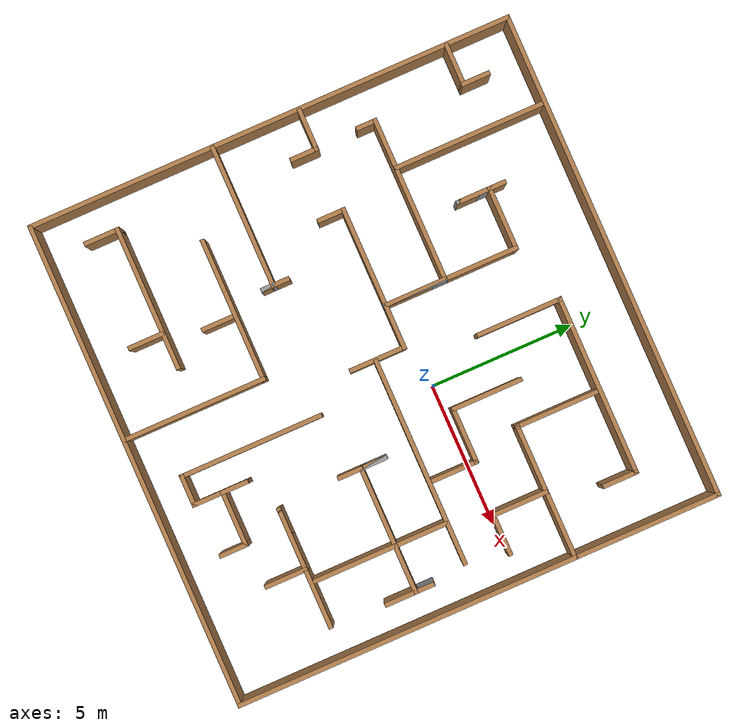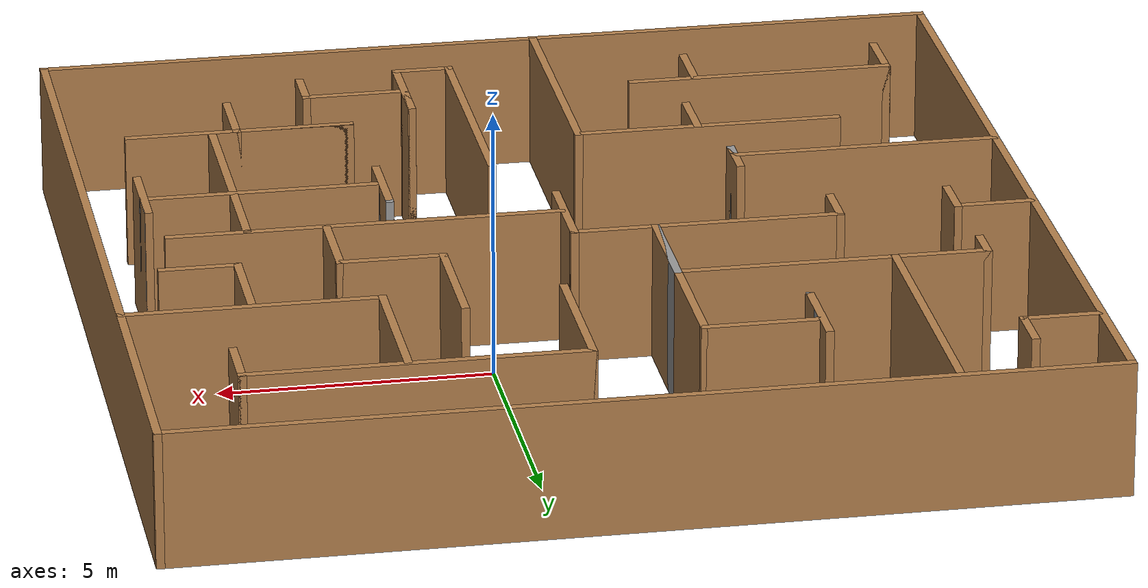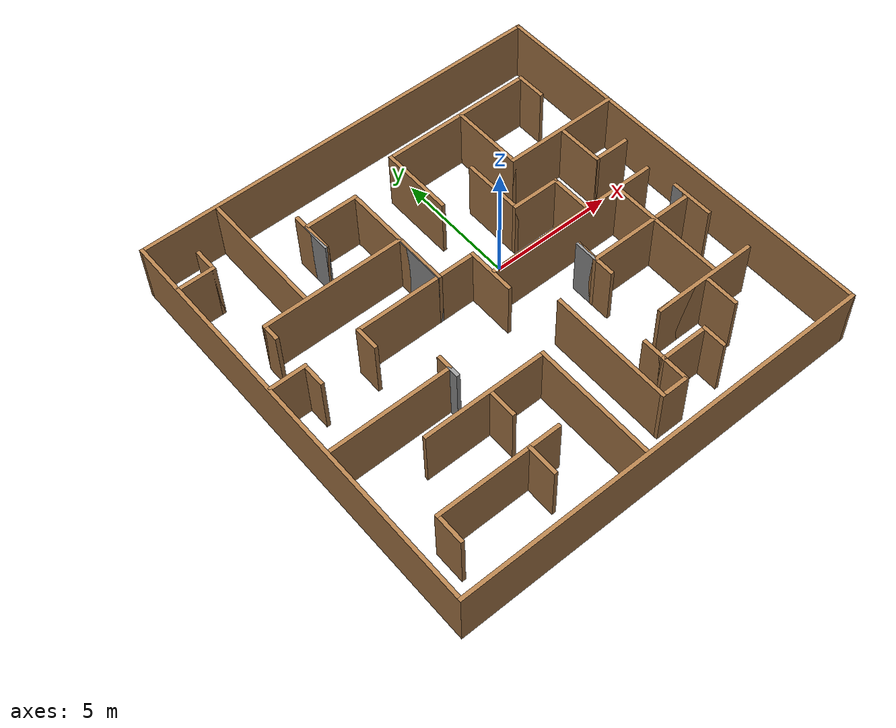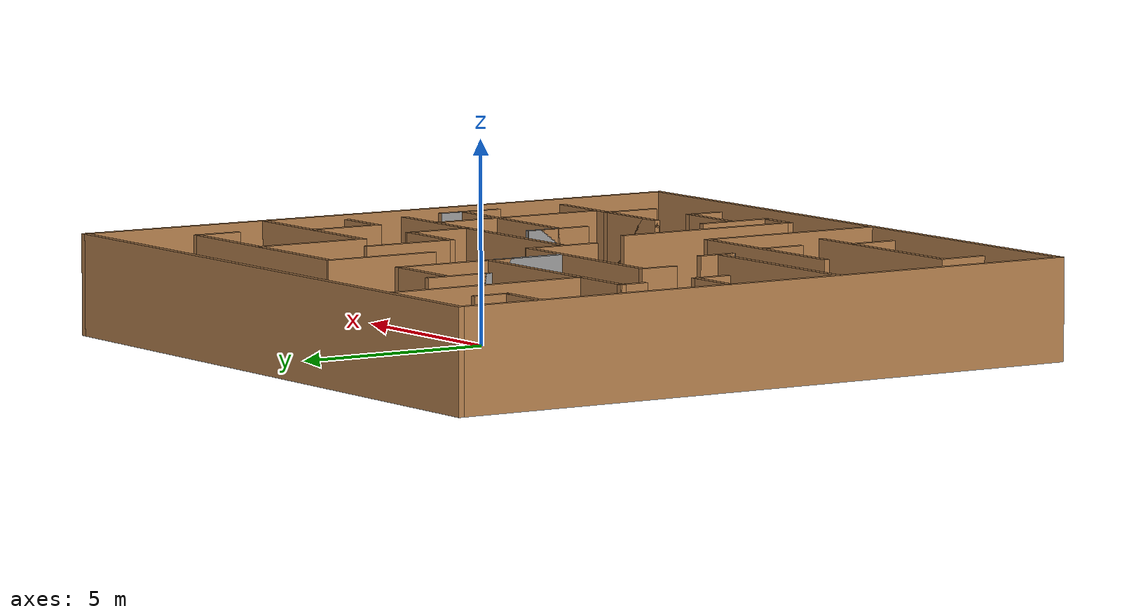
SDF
<?xml version='1.0'?>
<sdf version='1.7'>
  <model name='newmaze'>
    <pose>-1.51796 -1.44925 0 0 -0 0</pose>
    <link name='Wall_100'>
      <collision name='Wall_100_Collision'>
        <geometry>
          <box>
            <size>3 0.15 2.5</size>
          </box>
        </geometry>
        <pose>0 0 1.25 0 -0 0</pose>
      </collision>
      <visual name='Wall_100_Visual'>
        <pose>0 0 1.25 0 -0 0</pose>
        <geometry>
          <box>
            <size>3 0.15 2.5</size>
          </box>
        </geometry>
        <material>
          <script>
            <uri>file://media/materials/scripts/gazebo.material</uri>
            <name>Gazebo/Wood</name>
          </script>
          <ambient>1 1 1 1</ambient>
        </material>
        <meta>
          <layer>0</layer>
        </meta>
      </visual>
      <pose>3.81018 4.80727 0 0 -0 -1.5708</pose>
    </link>
    <link name='Wall_101'>
      <collision name='Wall_101_Collision'>
        <geometry>
          <box>
            <size>4.75 0.15 2.5</size>
          </box>
        </geometry>
        <pose>0 0 1.25 0 -0 0</pose>
      </collision>
      <visual name='Wall_101_Visual'>
        <pose>0 0 1.25 0 -0 0</pose>
        <geometry>
          <box>
            <size>4.75 0.15 2.5</size>
          </box>
        </geometry>
        <material>
          <script>
            <uri>file://media/materials/scripts/gazebo.material</uri>
            <name>Gazebo/Wood</name>
          </script>
          <ambient>1 1 1 1</ambient>
        </material>
        <meta>
          <layer>0</layer>
        </meta>
      </visual>
      <pose>6.11018 3.38227 0 0 -0 0</pose>
    </link>
    <link name='Wall_103'>
      <collision name='Wall_103_Collision'>
        <geometry>
          <box>
            <size>2 0.15 2.5</size>
          </box>
        </geometry>
        <pose>0 0 1.25 0 -0 0</pose>
      </collision>
      <visual name='Wall_103_Visual'>
        <pose>0 0 1.25 0 -0 0</pose>
        <geometry>
          <box>
            <size>2 0.15 2.5</size>
          </box>
        </geometry>
        <material>
          <script>
            <uri>file://media/materials/scripts/gazebo.material</uri>
            <name>Gazebo/Wood</name>
          </script>
          <ambient>1 1 1 1</ambient>
        </material>
        <meta>
          <layer>0</layer>
        </meta>
      </visual>
      <pose>6.11133 2.43744 0 0 -0 -1.5708</pose>
    </link>
    <link name='Wall_104'>
      <collision name='Wall_104_Collision'>
        <geometry>
          <box>
            <size>1.5 0.15 2.5</size>
          </box>
        </geometry>
        <pose>0 0 1.25 0 -0 0</pose>
      </collision>
      <visual name='Wall_104_Visual'>
        <pose>0 0 1.25 0 -0 0</pose>
        <geometry>
          <box>
            <size>1.5 0.15 2.5</size>
          </box>
        </geometry>
        <material>
          <script>
            <uri>file://media/materials/scripts/gazebo.material</uri>
            <name>Gazebo/Wood</name>
          </script>
          <ambient>1 1 1 1</ambient>
        </material>
        <meta>
          <layer>0</layer>
        </meta>
      </visual>
      <pose>6.78633 1.51244 0 0 -0 0</pose>
    </link>
    <link name='Wall_106'>
      <collision name='Wall_106_Collision'>
        <geometry>
          <box>
            <size>0.75 0.15 2.5</size>
          </box>
        </geometry>
        <pose>0 0 1.25 0 -0 0</pose>
      </collision>
      <visual name='Wall_106_Visual'>
        <pose>0 0 1.25 0 -0 0</pose>
        <geometry>
          <box>
            <size>0.75 0.15 2.5</size>
          </box>
        </geometry>
        <material>
          <script>
            <uri>file://media/materials/scripts/gazebo.material</uri>
            <name>Gazebo/Wood</name>
          </script>
          <ambient>1 1 1 1</ambient>
        </material>
        <meta>
          <layer>0</layer>
        </meta>
      </visual>
      <pose>-7.08821 2.8606 0 0 -0 1.5708</pose>
    </link>
    <link name='Wall_107'>
      <collision name='Wall_107_Collision'>
        <geometry>
          <box>
            <size>5.75 0.15 2.5</size>
          </box>
        </geometry>
        <pose>0 0 1.25 0 -0 0</pose>
      </collision>
      <visual name='Wall_107_Visual'>
        <pose>0 0 1.25 0 -0 0</pose>
        <geometry>
          <box>
            <size>5.75 0.15 2.5</size>
          </box>
        </geometry>
        <material>
          <script>
            <uri>file://media/materials/scripts/gazebo.material</uri>
            <name>Gazebo/Wood</name>
          </script>
          <ambient>1 1 1 1</ambient>
        </material>
        <meta>
          <layer>0</layer>
        </meta>
      </visual>
      <pose>-4.28821 3.1606 0 0 -0 0</pose>
    </link>
    <link name='Wall_108'>
      <collision name='Wall_108_Collision'>
        <geometry>
          <box>
            <size>2.25 0.15 2.5</size>
          </box>
        </geometry>
        <pose>0 0 1.25 0 -0 0</pose>
      </collision>
      <visual name='Wall_108_Visual'>
        <pose>0 0 1.25 0 -0 0</pose>
        <geometry>
          <box>
            <size>2.25 0.15 2.5</size>
          </box>
        </geometry>
        <material>
          <script>
            <uri>file://media/materials/scripts/gazebo.material</uri>
            <name>Gazebo/Grey</name>
          </script>
          <ambient>1 1 1 1</ambient>
        </material>
        <meta>
          <layer>0</layer>
        </meta>
      </visual>
      <pose>-1.48821 2.1106 0 0 -0 -1.5708</pose>
    </link>
    <link name='Wall_109'>
      <collision name='Wall_109_Collision'>
        <geometry>
          <box>
            <size>4.75 0.15 2.5</size>
          </box>
        </geometry>
        <pose>0 0 1.25 0 -0 0</pose>
      </collision>
      <visual name='Wall_109_Visual'>
        <pose>0 0 1.25 0 -0 0</pose>
        <geometry>
          <box>
            <size>4.75 0.15 2.5</size>
          </box>
        </geometry>
        <material>
          <script>
            <uri>file://media/materials/scripts/gazebo.material</uri>
            <name>Gazebo/Wood</name>
          </script>
          <ambient>1 1 1 1</ambient>
        </material>
        <meta>
          <layer>0</layer>
        </meta>
      </visual>
      <pose>-1.48821 3.3606 0 0 -0 1.5708</pose>
    </link>
    <link name='Wall_110'>
      <collision name='Wall_110_Collision'>
        <geometry>
          <box>
            <size>2.25 0.15 2.5</size>
          </box>
        </geometry>
        <pose>0 0 1.25 0 -0 0</pose>
      </collision>
      <visual name='Wall_110_Visual'>
        <pose>0 0 1.25 0 -0 0</pose>
        <geometry>
          <box>
            <size>2.25 0.15 2.5</size>
          </box>
        </geometry>
        <material>
          <script>
            <uri>file://media/materials/scripts/gazebo.material</uri>
            <name>Gazebo/Wood</name>
          </script>
          <ambient>1 1 1 1</ambient>
        </material>
        <meta>
          <layer>0</layer>
        </meta>
      </visual>
      <pose>-2.53821 5.6606 0 0 -0 3.14159</pose>
    </link>
    <link name='Wall_111'>
      <collision name='Wall_111_Collision'>
        <geometry>
          <box>
            <size>1.25 0.15 2.5</size>
          </box>
        </geometry>
        <pose>0 0 1.25 0 -0 0</pose>
      </collision>
      <visual name='Wall_111_Visual'>
        <pose>0 0 1.25 0 -0 0</pose>
        <geometry>
          <box>
            <size>1.25 0.15 2.5</size>
          </box>
        </geometry>
        <material>
          <script>
            <uri>file://media/materials/scripts/gazebo.material</uri>
            <name>Gazebo/Grey</name>
          </script>
          <ambient>1 1 1 1</ambient>
        </material>
        <meta>
          <layer>0</layer>
        </meta>
      </visual>
      <pose>-3.58821 5.1106 0 0 -0 -1.5708</pose>
    </link>
    <link name='Wall_112'>
      <collision name='Wall_112_Collision'>
        <geometry>
          <box>
            <size>1.75 0.15 2.5</size>
          </box>
        </geometry>
        <pose>0 0 1.25 0 -0 0</pose>
      </collision>
      <visual name='Wall_112_Visual'>
        <pose>0 0 1.25 0 -0 0</pose>
        <geometry>
          <box>
            <size>1.75 0.15 2.5</size>
          </box>
        </geometry>
        <material>
          <script>
            <uri>file://media/materials/scripts/gazebo.material</uri>
            <name>Gazebo/Wood</name>
          </script>
          <ambient>1 1 1 1</ambient>
        </material>
        <meta>
          <layer>0</layer>
        </meta>
      </visual>
      <pose>-3.58821 5.3606 0 0 -0 1.5708</pose>
    </link>
    <link name='Wall_114'>
      <collision name='Wall_114_Collision'>
        <geometry>
          <box>
            <size>5.25 0.15 2.5</size>
          </box>
        </geometry>
        <pose>0 0 1.25 0 -0 0</pose>
      </collision>
      <visual name='Wall_114_Visual'>
        <pose>0 0 1.25 0 -0 0</pose>
        <geometry>
          <box>
            <size>5.25 0.15 2.5</size>
          </box>
        </geometry>
        <material>
          <script>
            <uri>file://media/materials/scripts/gazebo.material</uri>
            <name>Gazebo/Wood</name>
          </script>
          <ambient>1 1 1 1</ambient>
        </material>
        <meta>
          <layer>0</layer>
        </meta>
      </visual>
      <pose>-5.41879 5.72406 0 0 -0 1.5708</pose>
    </link>
    <link name='Wall_116'>
      <collision name='Wall_116_Collision'>
        <geometry>
          <box>
            <size>1.5 0.15 2.5</size>
          </box>
        </geometry>
        <pose>0 0 1.25 0 -0 0</pose>
      </collision>
      <visual name='Wall_116_Visual'>
        <pose>0 0 1.25 0 -0 0</pose>
        <geometry>
          <box>
            <size>1.5 0.15 2.5</size>
          </box>
        </geometry>
        <material>
          <script>
            <uri>file://media/materials/scripts/gazebo.material</uri>
            <name>Gazebo/Wood</name>
          </script>
          <ambient>1 1 1 1</ambient>
        </material>
        <meta>
          <layer>0</layer>
        </meta>
      </visual>
      <pose>-7.70048 6.25144 0 0 -0 0</pose>
    </link>
    <link name='Wall_117'>
      <collision name='Wall_117_Collision'>
        <geometry>
          <box>
            <size>1 0.15 2.5</size>
          </box>
        </geometry>
        <pose>0 0 1.25 0 -0 0</pose>
      </collision>
      <visual name='Wall_117_Visual'>
        <pose>0 0 1.25 0 -0 0</pose>
        <geometry>
          <box>
            <size>1 0.15 2.5</size>
          </box>
        </geometry>
        <material>
          <script>
            <uri>file://media/materials/scripts/gazebo.material</uri>
            <name>Gazebo/Wood</name>
          </script>
          <ambient>1 1 1 1</ambient>
        </material>
        <meta>
          <layer>0</layer>
        </meta>
      </visual>
      <pose>-7.02548 6.67644 0 0 -0 1.5708</pose>
    </link>
    <link name='Wall_19'>
      <collision name='Wall_19_Collision'>
        <geometry>
          <box>
            <size>17 0.15 2.5</size>
          </box>
        </geometry>
        <pose>0 0 1.25 0 -0 0</pose>
      </collision>
      <visual name='Wall_19_Visual'>
        <pose>0 0 1.25 0 -0 0</pose>
        <geometry>
          <box>
            <size>17 0.15 2.5</size>
          </box>
        </geometry>
        <material>
          <script>
            <uri>file://media/materials/scripts/gazebo.material</uri>
            <name>Gazebo/Wood</name>
          </script>
          <ambient>1 1 1 1</ambient>
        </material>
        <meta>
          <layer>0</layer>
        </meta>
      </visual>
      <pose>0 -8.425 0 0 -0 0</pose>
    </link>
    <link name='Wall_20'>
      <collision name='Wall_20_Collision'>
        <geometry>
          <box>
            <size>17 0.15 2.5</size>
          </box>
        </geometry>
        <pose>0 0 1.25 0 -0 0</pose>
      </collision>
      <visual name='Wall_20_Visual'>
        <pose>0 0 1.25 0 -0 0</pose>
        <geometry>
          <box>
            <size>17 0.15 2.5</size>
          </box>
        </geometry>
        <material>
          <script>
            <uri>file://media/materials/scripts/gazebo.material</uri>
            <name>Gazebo/Wood</name>
          </script>
          <ambient>1 1 1 1</ambient>
        </material>
        <meta>
          <layer>0</layer>
        </meta>
      </visual>
      <pose>8.425 0 0 0 -0 1.5708</pose>
    </link>
    <link name='Wall_21'>
      <collision name='Wall_21_Collision'>
        <geometry>
          <box>
            <size>17 0.15 2.5</size>
          </box>
        </geometry>
        <pose>0 0 1.25 0 -0 0</pose>
      </collision>
      <visual name='Wall_21_Visual'>
        <pose>0 0 1.25 0 -0 0</pose>
        <geometry>
          <box>
            <size>17 0.15 2.5</size>
          </box>
        </geometry>
        <material>
          <script>
            <uri>file://media/materials/scripts/gazebo.material</uri>
            <name>Gazebo/Wood</name>
          </script>
          <ambient>1 1 1 1</ambient>
        </material>
        <meta>
          <layer>0</layer>
        </meta>
      </visual>
      <pose>0 8.425 0 0 -0 3.14159</pose>
    </link>
    <link name='Wall_22'>
      <collision name='Wall_22_Collision'>
        <geometry>
          <box>
            <size>17 0.15 2.5</size>
          </box>
        </geometry>
        <pose>0 0 1.25 0 -0 0</pose>
      </collision>
      <visual name='Wall_22_Visual'>
        <pose>0 0 1.25 0 -0 0</pose>
        <geometry>
          <box>
            <size>17 0.15 2.5</size>
          </box>
        </geometry>
        <material>
          <script>
            <uri>file://media/materials/scripts/gazebo.material</uri>
            <name>Gazebo/Wood</name>
          </script>
          <ambient>1 1 1 1</ambient>
        </material>
        <meta>
          <layer>0</layer>
        </meta>
      </visual>
      <pose>-8.425 0 0 0 -0 -1.5708</pose>
    </link>
    <link name='Wall_25'>
      <collision name='Wall_25_Collision'>
        <geometry>
          <box>
            <size>1.25 0.15 2.5</size>
          </box>
        </geometry>
        <pose>0 0 1.25 0 -0 0</pose>
      </collision>
      <visual name='Wall_25_Visual'>
        <pose>0 0 1.25 0 -0 0</pose>
        <geometry>
          <box>
            <size>1.25 0.15 2.5</size>
          </box>
        </geometry>
        <material>
          <script>
            <uri>file://media/materials/scripts/gazebo.material</uri>
            <name>Gazebo/Wood</name>
          </script>
          <ambient>1 1 1 1</ambient>
        </material>
        <meta>
          <layer>0</layer>
        </meta>
      </visual>
      <pose>-7.20966 -6.43403 0 0 -0 1.5708</pose>
    </link>
    <link name='Wall_26'>
      <collision name='Wall_26_Collision'>
        <geometry>
          <box>
            <size>5 0.15 2.5</size>
          </box>
        </geometry>
        <pose>0 0 1.25 0 -0 0</pose>
      </collision>
      <visual name='Wall_26_Visual'>
        <pose>0 0 1.25 0 -0 0</pose>
        <geometry>
          <box>
            <size>5 0.15 2.5</size>
          </box>
        </geometry>
        <material>
          <script>
            <uri>file://media/materials/scripts/gazebo.material</uri>
            <name>Gazebo/Wood</name>
          </script>
          <ambient>1 1 1 1</ambient>
        </material>
        <meta>
          <layer>0</layer>
        </meta>
      </visual>
      <pose>-4.78466 -5.88403 0 0 -0 0</pose>
    </link>
    <link name='Wall_28'>
      <collision name='Wall_28_Collision'>
        <geometry>
          <box>
            <size>1.25 0.15 2.5</size>
          </box>
        </geometry>
        <pose>0 0 1.25 0 -0 0</pose>
      </collision>
      <visual name='Wall_28_Visual'>
        <pose>0 0 1.25 0 -0 0</pose>
        <geometry>
          <box>
            <size>1.25 0.15 2.5</size>
          </box>
        </geometry>
        <material>
          <script>
            <uri>file://media/materials/scripts/gazebo.material</uri>
            <name>Gazebo/Wood</name>
          </script>
          <ambient>1 1 1 1</ambient>
        </material>
        <meta>
          <layer>0</layer>
        </meta>
      </visual>
      <pose>-3.54966 -6.48403 0 0 -0 -1.5708</pose>
    </link>
    <link name='Wall_36'>
      <collision name='Wall_36_Collision'>
        <geometry>
          <box>
            <size>5 0.15 2.5</size>
          </box>
        </geometry>
        <pose>0 0 1.25 0 -0 0</pose>
      </collision>
      <visual name='Wall_36_Visual'>
        <pose>0 0 1.25 0 -0 0</pose>
        <geometry>
          <box>
            <size>5 0.15 2.5</size>
          </box>
        </geometry>
        <material>
          <script>
            <uri>file://media/materials/scripts/gazebo.material</uri>
            <name>Gazebo/Wood</name>
          </script>
          <ambient>1 1 1 1</ambient>
        </material>
        <meta>
          <layer>0</layer>
        </meta>
      </visual>
      <pose>-0.899656 -5.93903 0 0 -0 1.5708</pose>
    </link>
    <link name='Wall_37'>
      <collision name='Wall_37_Collision'>
        <geometry>
          <box>
            <size>5 0.15 2.5</size>
          </box>
        </geometry>
        <pose>0 0 1.25 0 -0 0</pose>
      </collision>
      <visual name='Wall_37_Visual'>
        <pose>0 0 1.25 0 -0 0</pose>
        <geometry>
          <box>
            <size>5 0.15 2.5</size>
          </box>
        </geometry>
        <material>
          <script>
            <uri>file://media/materials/scripts/gazebo.material</uri>
            <name>Gazebo/Wood</name>
          </script>
          <ambient>1 1 1 1</ambient>
        </material>
        <meta>
          <layer>0</layer>
        </meta>
      </visual>
      <pose>-3.32466 -3.51403 0 0 -0 3.14159</pose>
    </link>
    <link name='Wall_39'>
      <collision name='Wall_39_Collision'>
        <geometry>
          <box>
            <size>1.25 0.15 2.5</size>
          </box>
        </geometry>
        <pose>0 0 1.25 0 -0 0</pose>
      </collision>
      <visual name='Wall_39_Visual'>
        <pose>0 0 1.25 0 -0 0</pose>
        <geometry>
          <box>
            <size>1.25 0.15 2.5</size>
          </box>
        </geometry>
        <material>
          <script>
            <uri>file://media/materials/scripts/gazebo.material</uri>
            <name>Gazebo/Wood</name>
          </script>
          <ambient>1 1 1 1</ambient>
        </material>
        <meta>
          <layer>0</layer>
        </meta>
      </visual>
      <pose>-3.13966 -4.07403 0 0 -0 -1.5708</pose>
    </link>
    <link name='Wall_43'>
      <collision name='Wall_43_Collision'>
        <geometry>
          <box>
            <size>5 0.15 2.5</size>
          </box>
        </geometry>
        <pose>0 0 1.25 0 -0 0</pose>
      </collision>
      <visual name='Wall_43_Visual'>
        <pose>0 0 1.25 0 -0 0</pose>
        <geometry>
          <box>
            <size>5 0.15 2.5</size>
          </box>
        </geometry>
        <material>
          <script>
            <uri>file://media/materials/scripts/gazebo.material</uri>
            <name>Gazebo/Wood</name>
          </script>
          <ambient>1 1 1 1</ambient>
        </material>
        <meta>
          <layer>0</layer>
        </meta>
      </visual>
      <pose>-5.96466 -2.00403 0 0 -0 0</pose>
    </link>
    <link name='Wall_44'>
      <collision name='Wall_44_Collision'>
        <geometry>
          <box>
            <size>0.5 0.15 2.5</size>
          </box>
        </geometry>
        <pose>0 0 1.25 0 -0 0</pose>
      </collision>
      <visual name='Wall_44_Visual'>
        <pose>0 0 1.25 0 -0 0</pose>
        <geometry>
          <box>
            <size>0.5 0.15 2.5</size>
          </box>
        </geometry>
        <material>
          <script>
            <uri>file://media/materials/scripts/gazebo.material</uri>
            <name>Gazebo/Grey</name>
          </script>
          <ambient>1 1 1 1</ambient>
        </material>
        <meta>
          <layer>0</layer>
        </meta>
      </visual>
      <pose>-3.53966 -2.17903 0 0 -0 -1.5708</pose>
    </link>
    <link name='Wall_45'>
      <collision name='Wall_45_Collision'>
        <geometry>
          <box>
            <size>1 0.15 2.5</size>
          </box>
        </geometry>
        <pose>0 0 1.25 0 -0 0</pose>
      </collision>
      <visual name='Wall_45_Visual'>
        <pose>0 0 1.25 0 -0 0</pose>
        <geometry>
          <box>
            <size>1 0.15 2.5</size>
          </box>
        </geometry>
        <material>
          <script>
            <uri>file://media/materials/scripts/gazebo.material</uri>
            <name>Gazebo/Wood</name>
          </script>
          <ambient>1 1 1 1</ambient>
        </material>
        <meta>
          <layer>0</layer>
        </meta>
      </visual>
      <pose>-3.53966 -1.92903 0 0 -0 1.5708</pose>
    </link>
    <link name='Wall_49'>
      <collision name='Wall_49_Collision'>
        <geometry>
          <box>
            <size>1.5 0.15 2.5</size>
          </box>
        </geometry>
        <pose>0 0 1.25 0 -0 0</pose>
      </collision>
      <visual name='Wall_49_Visual'>
        <pose>0 0 1.25 0 -0 0</pose>
        <geometry>
          <box>
            <size>1.5 0.15 2.5</size>
          </box>
        </geometry>
        <material>
          <script>
            <uri>file://media/materials/scripts/gazebo.material</uri>
            <name>Gazebo/Wood</name>
          </script>
          <ambient>1 1 1 1</ambient>
        </material>
        <meta>
          <layer>0</layer>
        </meta>
      </visual>
      <pose>-7.69244 1.05236 0 0 -0 0</pose>
    </link>
    <link name='Wall_50'>
      <collision name='Wall_50_Collision'>
        <geometry>
          <box>
            <size>1 0.15 2.5</size>
          </box>
        </geometry>
        <pose>0 0 1.25 0 -0 0</pose>
      </collision>
      <visual name='Wall_50_Visual'>
        <pose>0 0 1.25 0 -0 0</pose>
        <geometry>
          <box>
            <size>1 0.15 2.5</size>
          </box>
        </geometry>
        <material>
          <script>
            <uri>file://media/materials/scripts/gazebo.material</uri>
            <name>Gazebo/Wood</name>
          </script>
          <ambient>1 1 1 1</ambient>
        </material>
        <meta>
          <layer>0</layer>
        </meta>
      </visual>
      <pose>-7.01744 0.627362 0 0 -0 -1.5708</pose>
    </link>
    <link name='Wall_55'>
      <collision name='Wall_55_Collision'>
        <geometry>
          <box>
            <size>1 0.15 2.5</size>
          </box>
        </geometry>
        <pose>0 0 1.25 0 -0 0</pose>
      </collision>
      <visual name='Wall_55_Visual'>
        <pose>0 0 1.25 0 -0 0</pose>
        <geometry>
          <box>
            <size>1 0.15 2.5</size>
          </box>
        </geometry>
        <material>
          <script>
            <uri>file://media/materials/scripts/gazebo.material</uri>
            <name>Gazebo/Wood</name>
          </script>
          <ambient>1 1 1 1</ambient>
        </material>
        <meta>
          <layer>0</layer>
        </meta>
      </visual>
      <pose>-4.85744 0.637362 0 0 -0 1.5708</pose>
    </link>
    <link name='Wall_56'>
      <collision name='Wall_56_Collision'>
        <geometry>
          <box>
            <size>5 0.15 2.5</size>
          </box>
        </geometry>
        <pose>0 0 1.25 0 -0 0</pose>
      </collision>
      <visual name='Wall_56_Visual'>
        <pose>0 0 1.25 0 -0 0</pose>
        <geometry>
          <box>
            <size>5 0.15 2.5</size>
          </box>
        </geometry>
        <material>
          <script>
            <uri>file://media/materials/scripts/gazebo.material</uri>
            <name>Gazebo/Wood</name>
          </script>
          <ambient>1 1 1 1</ambient>
        </material>
        <meta>
          <layer>0</layer>
        </meta>
      </visual>
      <pose>-2.43244 1.06236 0 0 -0 0</pose>
    </link>
    <link name='Wall_57'>
      <collision name='Wall_57_Collision'>
        <geometry>
          <box>
            <size>2 0.15 2.5</size>
          </box>
        </geometry>
        <pose>0 0 1.25 0 -0 0</pose>
      </collision>
      <visual name='Wall_57_Visual'>
        <pose>0 0 1.25 0 -0 0</pose>
        <geometry>
          <box>
            <size>2 0.15 2.5</size>
          </box>
        </geometry>
        <material>
          <script>
            <uri>file://media/materials/scripts/gazebo.material</uri>
            <name>Gazebo/Wood</name>
          </script>
          <ambient>1 1 1 1</ambient>
        </material>
        <meta>
          <layer>0</layer>
        </meta>
      </visual>
      <pose>-0.007444 0.137362 0 0 -0 -1.5708</pose>
    </link>
    <link name='Wall_59'>
      <collision name='Wall_59_Collision'>
        <geometry>
          <box>
            <size>7.25 0.15 2.5</size>
          </box>
        </geometry>
        <pose>0 0 1.25 0 -0 0</pose>
      </collision>
      <visual name='Wall_59_Visual'>
        <pose>0 0 1.25 0 -0 0</pose>
        <geometry>
          <box>
            <size>7.25 0.15 2.5</size>
          </box>
        </geometry>
        <material>
          <script>
            <uri>file://media/materials/scripts/gazebo.material</uri>
            <name>Gazebo/Wood</name>
          </script>
          <ambient>1 1 1 1</ambient>
        </material>
        <meta>
          <layer>0</layer>
        </meta>
      </visual>
      <pose>3.60256 0.052362 0 0 -0 0</pose>
    </link>
    <link name='Wall_61'>
      <collision name='Wall_61_Collision'>
        <geometry>
          <box>
            <size>5 0.15 2.5</size>
          </box>
        </geometry>
        <pose>0 0 1.25 0 -0 0</pose>
      </collision>
      <visual name='Wall_61_Visual'>
        <pose>0 0 1.25 0 -0 0</pose>
        <geometry>
          <box>
            <size>5 0.15 2.5</size>
          </box>
        </geometry>
        <material>
          <script>
            <uri>file://media/materials/scripts/gazebo.material</uri>
            <name>Gazebo/Wood</name>
          </script>
          <ambient>1 1 1 1</ambient>
        </material>
        <meta>
          <layer>0</layer>
        </meta>
      </visual>
      <pose>0.923076 -4.74687 0 0 -0 -1.5708</pose>
    </link>
    <link name='Wall_62'>
      <collision name='Wall_62_Collision'>
        <geometry>
          <box>
            <size>1.1502 0.15 2.5</size>
          </box>
        </geometry>
        <pose>0 0 1.25 0 -0 0</pose>
      </collision>
      <visual name='Wall_62_Visual'>
        <pose>0 0 1.25 0 -0 0</pose>
        <geometry>
          <box>
            <size>1.1502 0.15 2.5</size>
          </box>
        </geometry>
        <material>
          <script>
            <uri>file://media/materials/scripts/gazebo.material</uri>
            <name>Gazebo/Wood</name>
          </script>
          <ambient>1 1 1 1</ambient>
        </material>
        <meta>
          <layer>0</layer>
        </meta>
      </visual>
      <pose>1.42308 -7.18187 0 0 -0 0</pose>
    </link>
    <link name='Wall_63'>
      <collision name='Wall_63_Collision'>
        <geometry>
          <box>
            <size>2 0.15 2.5</size>
          </box>
        </geometry>
        <pose>0 0 1.25 0 -0 0</pose>
      </collision>
      <visual name='Wall_63_Visual'>
        <pose>0 0 1.25 0 -0 0</pose>
        <geometry>
          <box>
            <size>2 0.15 2.5</size>
          </box>
        </geometry>
        <material>
          <script>
            <uri>file://media/materials/scripts/gazebo.material</uri>
            <name>Gazebo/Wood</name>
          </script>
          <ambient>1 1 1 1</ambient>
        </material>
        <meta>
          <layer>0</layer>
        </meta>
      </visual>
      <pose>1.92308 -6.25687 0 0 -0 1.5708</pose>
    </link>
    <link name='Wall_64'>
      <collision name='Wall_64_Collision'>
        <geometry>
          <box>
            <size>1 0.15 2.5</size>
          </box>
        </geometry>
        <pose>0 0 1.25 0 -0 0</pose>
      </collision>
      <visual name='Wall_64_Visual'>
        <pose>0 0 1.25 0 -0 0</pose>
        <geometry>
          <box>
            <size>1 0.15 2.5</size>
          </box>
        </geometry>
        <material>
          <script>
            <uri>file://media/materials/scripts/gazebo.material</uri>
            <name>Gazebo/Wood</name>
          </script>
          <ambient>1 1 1 1</ambient>
        </material>
        <meta>
          <layer>0</layer>
        </meta>
      </visual>
      <pose>1.92308 -5.75687 0 0 -0 -1.5708</pose>
    </link>
    <link name='Wall_65'>
      <collision name='Wall_65_Collision'>
        <geometry>
          <box>
            <size>2 0.15 2.5</size>
          </box>
        </geometry>
        <pose>0 0 1.25 0 -0 0</pose>
      </collision>
      <visual name='Wall_65_Visual'>
        <pose>0 0 1.25 0 -0 0</pose>
        <geometry>
          <box>
            <size>2 0.15 2.5</size>
          </box>
        </geometry>
        <material>
          <script>
            <uri>file://media/materials/scripts/gazebo.material</uri>
            <name>Gazebo/Wood</name>
          </script>
          <ambient>1 1 1 1</ambient>
        </material>
        <meta>
          <layer>0</layer>
        </meta>
      </visual>
      <pose>2.84808 -6.18187 0 0 -0 0</pose>
    </link>
    <link name='Wall_66'>
      <collision name='Wall_66_Collision'>
        <geometry>
          <box>
            <size>1 0.15 2.5</size>
          </box>
        </geometry>
        <pose>0 0 1.25 0 -0 0</pose>
      </collision>
      <visual name='Wall_66_Visual'>
        <pose>0 0 1.25 0 -0 0</pose>
        <geometry>
          <box>
            <size>1 0.15 2.5</size>
          </box>
        </geometry>
        <material>
          <script>
            <uri>file://media/materials/scripts/gazebo.material</uri>
            <name>Gazebo/Wood</name>
          </script>
          <ambient>1 1 1 1</ambient>
        </material>
        <meta>
          <layer>0</layer>
        </meta>
      </visual>
      <pose>3.77308 -6.60686 0 0 -0 -1.5708</pose>
    </link>
    <link name='Wall_73'>
      <collision name='Wall_73_Collision'>
        <geometry>
          <box>
            <size>1.5 0.15 2.5</size>
          </box>
        </geometry>
        <pose>0 0 1.25 0 -0 0</pose>
      </collision>
      <visual name='Wall_73_Visual'>
        <pose>0 0 1.25 0 -0 0</pose>
        <geometry>
          <box>
            <size>1.5 0.15 2.5</size>
          </box>
        </geometry>
        <material>
          <script>
            <uri>file://media/materials/scripts/gazebo.material</uri>
            <name>Gazebo/Wood</name>
          </script>
          <ambient>1 1 1 1</ambient>
        </material>
        <meta>
          <layer>0</layer>
        </meta>
      </visual>
      <pose>5.27685 -5.41473 0 0 -0 1.5708</pose>
    </link>
    <link name='Wall_76'>
      <collision name='Wall_76_Collision'>
        <geometry>
          <box>
            <size>2.25 0.15 2.5</size>
          </box>
        </geometry>
        <pose>0 0 1.25 0 -0 0</pose>
      </collision>
      <visual name='Wall_76_Visual'>
        <pose>0 0 1.25 0 -0 0</pose>
        <geometry>
          <box>
            <size>2.25 0.15 2.5</size>
          </box>
        </geometry>
        <material>
          <script>
            <uri>file://media/materials/scripts/gazebo.material</uri>
            <name>Gazebo/Wood</name>
          </script>
          <ambient>1 1 1 1</ambient>
        </material>
        <meta>
          <layer>0</layer>
        </meta>
      </visual>
      <pose>4.22685 -4.73973 0 0 -0 3.14159</pose>
    </link>
    <link name='Wall_77'>
      <collision name='Wall_77_Collision'>
        <geometry>
          <box>
            <size>4.25 0.15 2.5</size>
          </box>
        </geometry>
        <pose>0 0 1.25 0 -0 0</pose>
      </collision>
      <visual name='Wall_77_Visual'>
        <pose>0 0 1.25 0 -0 0</pose>
        <geometry>
          <box>
            <size>4.25 0.15 2.5</size>
          </box>
        </geometry>
        <material>
          <script>
            <uri>file://media/materials/scripts/gazebo.material</uri>
            <name>Gazebo/Wood</name>
          </script>
          <ambient>1 1 1 1</ambient>
        </material>
        <meta>
          <layer>0</layer>
        </meta>
      </visual>
      <pose>5.22685 -4.73973 0 0 -0 0</pose>
    </link>
    <link name='Wall_79'>
      <collision name='Wall_79_Collision'>
        <geometry>
          <box>
            <size>4.75 0.15 2.5</size>
          </box>
        </geometry>
        <pose>0 0 1.25 0 -0 0</pose>
      </collision>
      <visual name='Wall_79_Visual'>
        <pose>0 0 1.25 0 -0 0</pose>
        <geometry>
          <box>
            <size>4.75 0.15 2.5</size>
          </box>
        </geometry>
        <material>
          <script>
            <uri>file://media/materials/scripts/gazebo.material</uri>
            <name>Gazebo/Wood</name>
          </script>
          <ambient>1 1 1 1</ambient>
        </material>
        <meta>
          <layer>0</layer>
        </meta>
      </visual>
      <pose>5.74103 -2.29901 0 0 -0 1.5708</pose>
    </link>
    <link name='Wall_81'>
      <collision name='Wall_81_Collision'>
        <geometry>
          <box>
            <size>4.5 0.15 2.5</size>
          </box>
        </geometry>
        <pose>0 0 1.25 0 -0 0</pose>
      </collision>
      <visual name='Wall_81_Visual'>
        <pose>0 0 1.25 0 -0 0</pose>
        <geometry>
          <box>
            <size>4.5 0.15 2.5</size>
          </box>
        </geometry>
        <material>
          <script>
            <uri>file://media/materials/scripts/gazebo.material</uri>
            <name>Gazebo/Wood</name>
          </script>
          <ambient>1 1 1 1</ambient>
        </material>
        <meta>
          <layer>0</layer>
        </meta>
      </visual>
      <pose>5.19168 -1.78208 0 0 -0 0</pose>
    </link>
    <link name='Wall_83'>
      <collision name='Wall_83_Collision'>
        <geometry>
          <box>
            <size>0.75 0.15 2.5</size>
          </box>
        </geometry>
        <pose>0 0 1.25 0 -0 0</pose>
      </collision>
      <visual name='Wall_83_Visual'>
        <pose>0 0 1.25 0 -0 0</pose>
        <geometry>
          <box>
            <size>0.75 0.15 2.5</size>
          </box>
        </geometry>
        <material>
          <script>
            <uri>file://media/materials/scripts/gazebo.material</uri>
            <name>Gazebo/Grey</name>
          </script>
          <ambient>1 1 1 1</ambient>
        </material>
        <meta>
          <layer>0</layer>
        </meta>
      </visual>
      <pose>7.36668 -1.48208 0 0 -0 1.5708</pose>
    </link>
    <link name='Wall_84'>
      <collision name='Wall_84_Collision'>
        <geometry>
          <box>
            <size>1.75 0.15 2.5</size>
          </box>
        </geometry>
        <pose>0 0 1.25 0 -0 0</pose>
      </collision>
      <visual name='Wall_84_Visual'>
        <pose>0 0 1.25 0 -0 0</pose>
        <geometry>
          <box>
            <size>1.75 0.15 2.5</size>
          </box>
        </geometry>
        <material>
          <script>
            <uri>file://media/materials/scripts/gazebo.material</uri>
            <name>Gazebo/Wood</name>
          </script>
          <ambient>1 1 1 1</ambient>
        </material>
        <meta>
          <layer>0</layer>
        </meta>
      </visual>
      <pose>7.36668 -1.98208 0 0 -0 -1.5708</pose>
    </link>
    <link name='Wall_86'>
      <collision name='Wall_86_Collision'>
        <geometry>
          <box>
            <size>1 0.15 2.5</size>
          </box>
        </geometry>
        <pose>0 0 1.25 0 -0 0</pose>
      </collision>
      <visual name='Wall_86_Visual'>
        <pose>0 0 1.25 0 -0 0</pose>
        <geometry>
          <box>
            <size>1 0.15 2.5</size>
          </box>
        </geometry>
        <material>
          <script>
            <uri>file://media/materials/scripts/gazebo.material</uri>
            <name>Gazebo/Grey</name>
          </script>
          <ambient>1 1 1 1</ambient>
        </material>
        <meta>
          <layer>0</layer>
        </meta>
      </visual>
      <pose>3.01668 -1.35708 0 0 -0 1.5708</pose>
    </link>
    <link name='Wall_87'>
      <collision name='Wall_87_Collision'>
        <geometry>
          <box>
            <size>1.75 0.15 2.5</size>
          </box>
        </geometry>
        <pose>0 0 1.25 0 -0 0</pose>
      </collision>
      <visual name='Wall_87_Visual'>
        <pose>0 0 1.25 0 -0 0</pose>
        <geometry>
          <box>
            <size>1.75 0.15 2.5</size>
          </box>
        </geometry>
        <material>
          <script>
            <uri>file://media/materials/scripts/gazebo.material</uri>
            <name>Gazebo/Wood</name>
          </script>
          <ambient>1 1 1 1</ambient>
        </material>
        <meta>
          <layer>0</layer>
        </meta>
      </visual>
      <pose>3.01668 -1.73208 0 0 -0 -1.5708</pose>
    </link>
    <link name='Wall_89'>
      <collision name='Wall_89_Collision'>
        <geometry>
          <box>
            <size>1.75 0.15 2.5</size>
          </box>
        </geometry>
        <pose>0 0 1.25 0 -0 0</pose>
      </collision>
      <visual name='Wall_89_Visual'>
        <pose>0 0 1.25 0 -0 0</pose>
        <geometry>
          <box>
            <size>1.75 0.15 2.5</size>
          </box>
        </geometry>
        <material>
          <script>
            <uri>file://media/materials/scripts/gazebo.material</uri>
            <name>Gazebo/Wood</name>
          </script>
          <ambient>1 1 1 1</ambient>
        </material>
        <meta>
          <layer>0</layer>
        </meta>
      </visual>
      <pose>4.31273 0.909091 0 0 -0 1.5708</pose>
    </link>
    <link name='Wall_90'>
      <collision name='Wall_90_Collision'>
        <geometry>
          <box>
            <size>2 0.15 2.5</size>
          </box>
        </geometry>
        <pose>0 0 1.25 0 -0 0</pose>
      </collision>
      <visual name='Wall_90_Visual'>
        <pose>0 0 1.25 0 -0 0</pose>
        <geometry>
          <box>
            <size>2 0.15 2.5</size>
          </box>
        </geometry>
        <material>
          <script>
            <uri>file://media/materials/scripts/gazebo.material</uri>
            <name>Gazebo/Wood</name>
          </script>
          <ambient>1 1 1 1</ambient>
        </material>
        <meta>
          <layer>0</layer>
        </meta>
      </visual>
      <pose>3.38773 1.70909 0 0 -0 3.14159</pose>
    </link>
    <link name='Wall_91'>
      <collision name='Wall_91_Collision'>
        <geometry>
          <box>
            <size>2.5 0.15 2.5</size>
          </box>
        </geometry>
        <pose>0 0 1.25 0 -0 0</pose>
      </collision>
      <visual name='Wall_91_Visual'>
        <pose>0 0 1.25 0 -0 0</pose>
        <geometry>
          <box>
            <size>2.5 0.15 2.5</size>
          </box>
        </geometry>
        <material>
          <script>
            <uri>file://media/materials/scripts/gazebo.material</uri>
            <name>Gazebo/Wood</name>
          </script>
          <ambient>1 1 1 1</ambient>
        </material>
        <meta>
          <layer>0</layer>
        </meta>
      </visual>
      <pose>2.46273 2.88409 0 0 -0 1.5708</pose>
    </link>
    <link name='Wall_96'>
      <collision name='Wall_96_Collision'>
        <geometry>
          <box>
            <size>3 0.15 2.5</size>
          </box>
        </geometry>
        <pose>0 0 1.25 0 -0 0</pose>
      </collision>
      <visual name='Wall_96_Visual'>
        <pose>0 0 1.25 0 -0 0</pose>
        <geometry>
          <box>
            <size>3 0.15 2.5</size>
          </box>
        </geometry>
        <material>
          <script>
            <uri>file://media/materials/scripts/gazebo.material</uri>
            <name>Gazebo/Wood</name>
          </script>
          <ambient>1 1 1 1</ambient>
        </material>
        <meta>
          <layer>0</layer>
        </meta>
      </visual>
      <pose>0.596506 4.86679 0 0 -0 1.5708</pose>
    </link>
    <link name='Wall_97'>
      <collision name='Wall_97_Collision'>
        <geometry>
          <box>
            <size>6.25 0.15 2.5</size>
          </box>
        </geometry>
        <pose>0 0 1.25 0 -0 0</pose>
      </collision>
      <visual name='Wall_97_Visual'>
        <pose>0 0 1.25 0 -0 0</pose>
        <geometry>
          <box>
            <size>6.25 0.15 2.5</size>
          </box>
        </geometry>
        <material>
          <script>
            <uri>file://media/materials/scripts/gazebo.material</uri>
            <name>Gazebo/Wood</name>
          </script>
          <ambient>1 1 1 1</ambient>
        </material>
        <meta>
          <layer>0</layer>
        </meta>
      </visual>
      <pose>3.64651 6.29179 0 0 -0 0</pose>
    </link>
    <link name='Wall_98'>
      <collision name='Wall_98_Collision'>
        <geometry>
          <box>
            <size>1.25 0.15 2.5</size>
          </box>
        </geometry>
        <pose>0 0 1.25 0 -0 0</pose>
      </collision>
      <visual name='Wall_98_Visual'>
        <pose>0 0 1.25 0 -0 0</pose>
        <geometry>
          <box>
            <size>1.25 0.15 2.5</size>
          </box>
        </geometry>
        <material>
          <script>
            <uri>file://media/materials/scripts/gazebo.material</uri>
            <name>Gazebo/Wood</name>
          </script>
          <ambient>1 1 1 1</ambient>
        </material>
        <meta>
          <layer>0</layer>
        </meta>
      </visual>
      <pose>6.69651 5.74179 0 0 -0 -1.5708</pose>
    </link>
    <static>1</static>
  </model>
</sdf>
